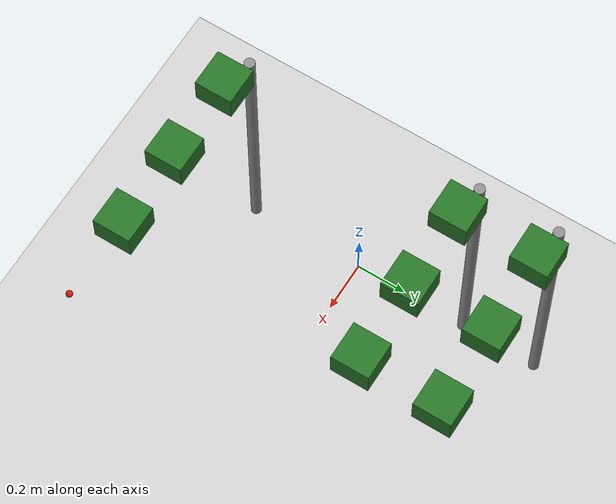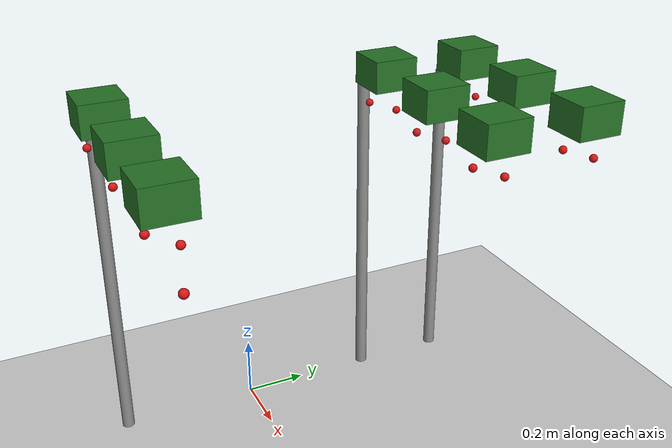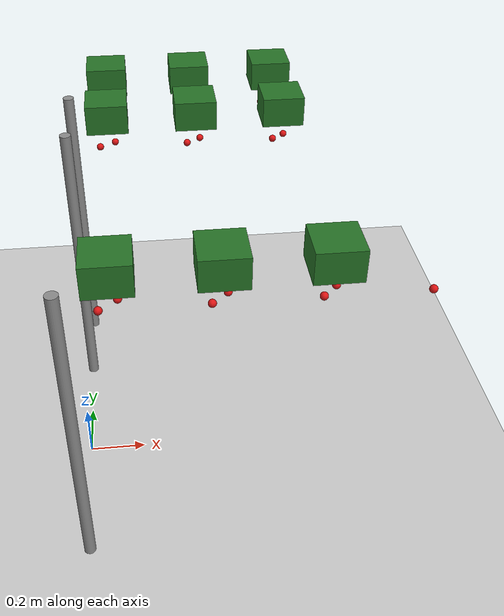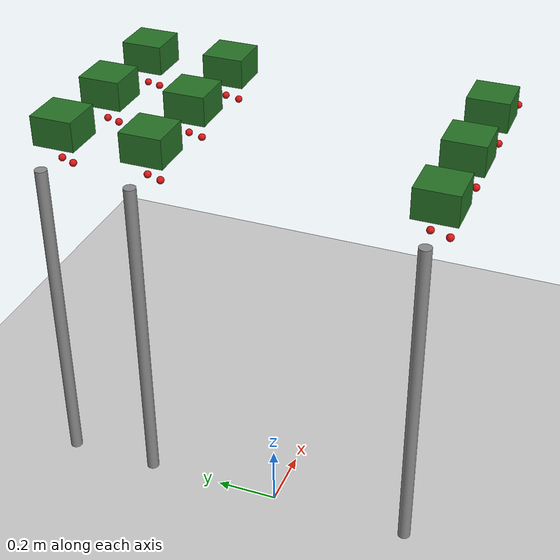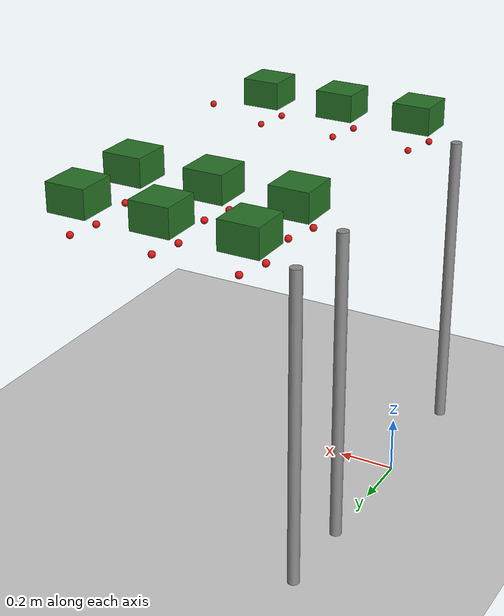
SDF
<sdf version="1.7">
 <world name="irish_polytunnel">
  <include><uri>model://sun</uri></include>
  <include><uri>model://ground_plane</uri></include>
  <model name="row0_L_post0">
   <static>true</static>
   <pose>0.000 0.450 0.550 0 0 0</pose>
   <link name="link">
    <collision name="collision">
     <geometry><cylinder><radius>0.02</radius><length>1.100</length></cylinder></geometry>
    </collision>
    <visual name="visual">
     <geometry><cylinder><radius>0.02</radius><length>1.100</length></cylinder></geometry>
     <material><ambient>0.5 0.5 0.5 1</ambient><diffuse>0.55 0.55 0.55 1</diffuse></material>
    </visual>
   </link>
  </model>
  <model name="row0_L_plant0_foliage">
   <static>true</static>
   <pose>0.150 0.450 1.180 0 0 0</pose>
   <link name="link">
    <visual name="visual">
     <geometry><box><size>0.14 0.14 0.10</size></box></geometry>
     <material><ambient>0.10 0.35 0.10 1</ambient><diffuse>0.15 0.45 0.15 1</diffuse></material>
    </visual>
   </link>
  </model>
  <model name="row0_L_plant0_berry_0">
   <static>true</static>
   <pose>0.120 0.410 1.070 0 0 0</pose>
   <link name="link">
    <visual name="visual">
     <geometry><sphere><radius>0.012</radius></sphere></geometry>
     <material><ambient>0.75 0.05 0.05 1</ambient><diffuse>0.85 0.08 0.08 1</diffuse></material>
    </visual>
   </link>
  </model>
  <model name="row0_L_plant0_berry_1">
   <static>true</static>
   <pose>0.170 0.480 1.050 0 0 0</pose>
   <link name="link">
    <visual name="visual">
     <geometry><sphere><radius>0.012</radius></sphere></geometry>
     <material><ambient>0.75 0.05 0.05 1</ambient><diffuse>0.85 0.08 0.08 1</diffuse></material>
    </visual>
   </link>
  </model>
  <model name="row0_L_plant1_foliage">
   <static>true</static>
   <pose>0.450 0.450 1.180 0 0 0</pose>
   <link name="link">
    <visual name="visual">
     <geometry><box><size>0.14 0.14 0.10</size></box></geometry>
     <material><ambient>0.10 0.35 0.10 1</ambient><diffuse>0.15 0.45 0.15 1</diffuse></material>
    </visual>
   </link>
  </model>
  <model name="row0_L_plant1_berry_0">
   <static>true</static>
   <pose>0.420 0.410 1.070 0 0 0</pose>
   <link name="link">
    <visual name="visual">
     <geometry><sphere><radius>0.012</radius></sphere></geometry>
     <material><ambient>0.75 0.05 0.05 1</ambient><diffuse>0.85 0.08 0.08 1</diffuse></material>
    </visual>
   </link>
  </model>
  <model name="row0_L_plant1_berry_1">
   <static>true</static>
   <pose>0.470 0.480 1.050 0 0 0</pose>
   <link name="link">
    <visual name="visual">
     <geometry><sphere><radius>0.012</radius></sphere></geometry>
     <material><ambient>0.75 0.05 0.05 1</ambient><diffuse>0.85 0.08 0.08 1</diffuse></material>
    </visual>
   </link>
  </model>
  <model name="row0_L_plant2_foliage">
   <static>true</static>
   <pose>0.750 0.450 1.180 0 0 0</pose>
   <link name="link">
    <visual name="visual">
     <geometry><box><size>0.14 0.14 0.10</size></box></geometry>
     <material><ambient>0.10 0.35 0.10 1</ambient><diffuse>0.15 0.45 0.15 1</diffuse></material>
    </visual>
   </link>
  </model>
  <model name="row0_L_plant2_berry_0">
   <static>true</static>
   <pose>0.720 0.410 1.070 0 0 0</pose>
   <link name="link">
    <visual name="visual">
     <geometry><sphere><radius>0.012</radius></sphere></geometry>
     <material><ambient>0.75 0.05 0.05 1</ambient><diffuse>0.85 0.08 0.08 1</diffuse></material>
    </visual>
   </link>
  </model>
  <model name="row0_L_plant2_berry_1">
   <static>true</static>
   <pose>0.770 0.480 1.050 0 0 0</pose>
   <link name="link">
    <visual name="visual">
     <geometry><sphere><radius>0.012</radius></sphere></geometry>
     <material><ambient>0.75 0.05 0.05 1</ambient><diffuse>0.85 0.08 0.08 1</diffuse></material>
    </visual>
   </link>
  </model>
  <model name="row0_R_post0">
   <static>true</static>
   <pose>0.000 -0.450 0.550 0 0 0</pose>
   <link name="link">
    <collision name="collision">
     <geometry><cylinder><radius>0.02</radius><length>1.100</length></cylinder></geometry>
    </collision>
    <visual name="visual">
     <geometry><cylinder><radius>0.02</radius><length>1.100</length></cylinder></geometry>
     <material><ambient>0.5 0.5 0.5 1</ambient><diffuse>0.55 0.55 0.55 1</diffuse></material>
    </visual>
   </link>
  </model>
  <model name="row0_R_plant0_foliage">
   <static>true</static>
   <pose>0.150 -0.450 1.180 0 0 0</pose>
   <link name="link">
    <visual name="visual">
     <geometry><box><size>0.14 0.14 0.10</size></box></geometry>
     <material><ambient>0.10 0.35 0.10 1</ambient><diffuse>0.15 0.45 0.15 1</diffuse></material>
    </visual>
   </link>
  </model>
  <model name="row0_R_plant0_berry_0">
   <static>true</static>
   <pose>0.120 -0.490 1.070 0 0 0</pose>
   <link name="link">
    <visual name="visual">
     <geometry><sphere><radius>0.012</radius></sphere></geometry>
     <material><ambient>0.75 0.05 0.05 1</ambient><diffuse>0.85 0.08 0.08 1</diffuse></material>
    </visual>
   </link>
  </model>
  <model name="row0_R_plant0_berry_1">
   <static>true</static>
   <pose>0.170 -0.420 1.050 0 0 0</pose>
   <link name="link">
    <visual name="visual">
     <geometry><sphere><radius>0.012</radius></sphere></geometry>
     <material><ambient>0.75 0.05 0.05 1</ambient><diffuse>0.85 0.08 0.08 1</diffuse></material>
    </visual>
   </link>
  </model>
  <model name="row0_R_plant1_foliage">
   <static>true</static>
   <pose>0.450 -0.450 1.180 0 0 0</pose>
   <link name="link">
    <visual name="visual">
     <geometry><box><size>0.14 0.14 0.10</size></box></geometry>
     <material><ambient>0.10 0.35 0.10 1</ambient><diffuse>0.15 0.45 0.15 1</diffuse></material>
    </visual>
   </link>
  </model>
  <model name="row0_R_plant1_berry_0">
   <static>true</static>
   <pose>0.420 -0.490 1.070 0 0 0</pose>
   <link name="link">
    <visual name="visual">
     <geometry><sphere><radius>0.012</radius></sphere></geometry>
     <material><ambient>0.75 0.05 0.05 1</ambient><diffuse>0.85 0.08 0.08 1</diffuse></material>
    </visual>
   </link>
  </model>
  <model name="row0_R_plant1_berry_1">
   <static>true</static>
   <pose>0.470 -0.420 1.050 0 0 0</pose>
   <link name="link">
    <visual name="visual">
     <geometry><sphere><radius>0.012</radius></sphere></geometry>
     <material><ambient>0.75 0.05 0.05 1</ambient><diffuse>0.85 0.08 0.08 1</diffuse></material>
    </visual>
   </link>
  </model>
  <model name="row0_R_plant2_foliage">
   <static>true</static>
   <pose>0.750 -0.450 1.180 0 0 0</pose>
   <link name="link">
    <visual name="visual">
     <geometry><box><size>0.14 0.14 0.10</size></box></geometry>
     <material><ambient>0.10 0.35 0.10 1</ambient><diffuse>0.15 0.45 0.15 1</diffuse></material>
    </visual>
   </link>
  </model>
  <model name="row0_R_plant2_berry_0">
   <static>true</static>
   <pose>0.720 -0.490 1.070 0 0 0</pose>
   <link name="link">
    <visual name="visual">
     <geometry><sphere><radius>0.012</radius></sphere></geometry>
     <material><ambient>0.75 0.05 0.05 1</ambient><diffuse>0.85 0.08 0.08 1</diffuse></material>
    </visual>
   </link>
  </model>
  <model name="row0_R_plant2_berry_1">
   <static>true</static>
   <pose>0.770 -0.420 1.050 0 0 0</pose>
   <link name="link">
    <visual name="visual">
     <geometry><sphere><radius>0.012</radius></sphere></geometry>
     <material><ambient>0.75 0.05 0.05 1</ambient><diffuse>0.85 0.08 0.08 1</diffuse></material>
    </visual>
   </link>
  </model>
  <model name="row0_R_plant3_berry_0">
   <static>true</static>
   <pose>1.020 -0.490 1.070 0 0 0</pose>
   <link name="link">
    <visual name="visual">
     <geometry><sphere><radius>0.012</radius></sphere></geometry>
     <material><ambient>0.75 0.05 0.05 1</ambient><diffuse>0.85 0.08 0.08 1</diffuse></material>
    </visual>
   </link>
  </model>
  <model name="row1_R_post0">
   <static>true</static>
   <pose>0.000 0.750 0.550 0 0 0</pose>
   <link name="link">
    <collision name="collision">
     <geometry><cylinder><radius>0.02</radius><length>1.100</length></cylinder></geometry>
    </collision>
    <visual name="visual">
     <geometry><cylinder><radius>0.02</radius><length>1.100</length></cylinder></geometry>
     <material><ambient>0.5 0.5 0.5 1</ambient><diffuse>0.55 0.55 0.55 1</diffuse></material>
    </visual>
   </link>
  </model>
  <model name="row1_R_plant0_foliage">
   <static>true</static>
   <pose>0.150 0.750 1.180 0 0 0</pose>
   <link name="link">
    <visual name="visual">
     <geometry><box><size>0.14 0.14 0.10</size></box></geometry>
     <material><ambient>0.10 0.35 0.10 1</ambient><diffuse>0.15 0.45 0.15 1</diffuse></material>
    </visual>
   </link>
  </model>
  <model name="row1_R_plant0_berry_0">
   <static>true</static>
   <pose>0.120 0.710 1.070 0 0 0</pose>
   <link name="link">
    <visual name="visual">
     <geometry><sphere><radius>0.012</radius></sphere></geometry>
     <material><ambient>0.75 0.05 0.05 1</ambient><diffuse>0.85 0.08 0.08 1</diffuse></material>
    </visual>
   </link>
  </model>
  <model name="row1_R_plant0_berry_1">
   <static>true</static>
   <pose>0.170 0.780 1.050 0 0 0</pose>
   <link name="link">
    <visual name="visual">
     <geometry><sphere><radius>0.012</radius></sphere></geometry>
     <material><ambient>0.75 0.05 0.05 1</ambient><diffuse>0.85 0.08 0.08 1</diffuse></material>
    </visual>
   </link>
  </model>
  <model name="row1_R_plant1_foliage">
   <static>true</static>
   <pose>0.450 0.750 1.180 0 0 0</pose>
   <link name="link">
    <visual name="visual">
     <geometry><box><size>0.14 0.14 0.10</size></box></geometry>
     <material><ambient>0.10 0.35 0.10 1</ambient><diffuse>0.15 0.45 0.15 1</diffuse></material>
    </visual>
   </link>
  </model>
  <model name="row1_R_plant1_berry_0">
   <static>true</static>
   <pose>0.420 0.710 1.070 0 0 0</pose>
   <link name="link">
    <visual name="visual">
     <geometry><sphere><radius>0.012</radius></sphere></geometry>
     <material><ambient>0.75 0.05 0.05 1</ambient><diffuse>0.85 0.08 0.08 1</diffuse></material>
    </visual>
   </link>
  </model>
  <model name="row1_R_plant1_berry_1">
   <static>true</static>
   <pose>0.470 0.780 1.050 0 0 0</pose>
   <link name="link">
    <visual name="visual">
     <geometry><sphere><radius>0.012</radius></sphere></geometry>
     <material><ambient>0.75 0.05 0.05 1</ambient><diffuse>0.85 0.08 0.08 1</diffuse></material>
    </visual>
   </link>
  </model>
  <model name="row1_R_plant2_foliage">
   <static>true</static>
   <pose>0.750 0.750 1.180 0 0 0</pose>
   <link name="link">
    <visual name="visual">
     <geometry><box><size>0.14 0.14 0.10</size></box></geometry>
     <material><ambient>0.10 0.35 0.10 1</ambient><diffuse>0.15 0.45 0.15 1</diffuse></material>
    </visual>
   </link>
  </model>
  <model name="row1_R_plant2_berry_0">
   <static>true</static>
   <pose>0.720 0.710 1.070 0 0 0</pose>
   <link name="link">
    <visual name="visual">
     <geometry><sphere><radius>0.012</radius></sphere></geometry>
     <material><ambient>0.75 0.05 0.05 1</ambient><diffuse>0.85 0.08 0.08 1</diffuse></material>
    </visual>
   </link>
  </model>
  <model name="row1_R_plant2_berry_1">
   <static>true</static>
   <pose>0.770 0.780 1.050 0 0 0</pose>
   <link name="link">
    <visual name="visual">
     <geometry><sphere><radius>0.012</radius></sphere></geometry>
     <material><ambient>0.75 0.05 0.05 1</ambient><diffuse>0.85 0.08 0.08 1</diffuse></material>
    </visual>
   </link>
  </model>
 </world>
</sdf>
